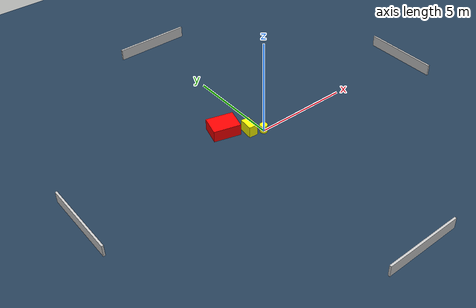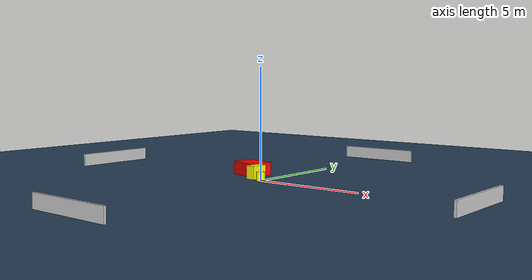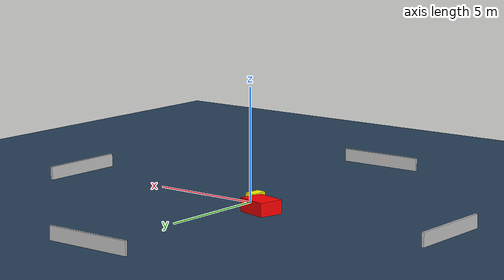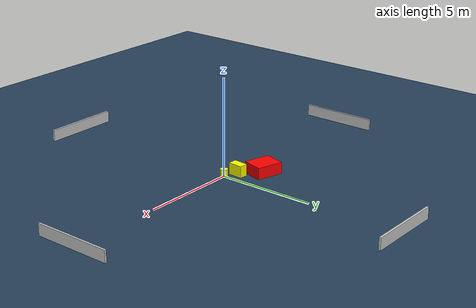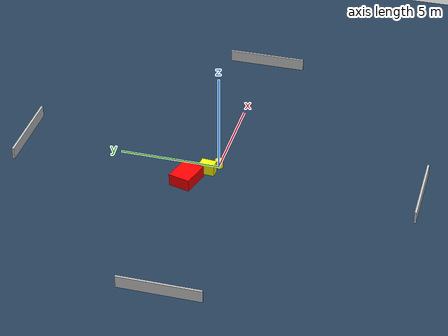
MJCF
<?xml version="1.0" ?>
<mujoco model="generated_environment">
  <option timestep="0.01" integrator="RK4" cone="elliptic"/>
  <default>
    <geom density="1"/>
  </default>
  <asset>
    <texture builtin="gradient" height="3072" name="skybox" rgb1="0.3 0.5 0.7" rgb2="0 0 0" type="skybox" width="512"/>
    <texture builtin="checker" height="300" name="groundplane" rgb1="0.2 0.3 0.4" rgb2="0.1 0.2 0.3" type="2d" width="300"/>
    <material name="groundplane" reflectance="0.2" texrepeat="5 5" texture="groundplane"/>
  </asset>
  <worldbody>
    <light dir="0 0 -1" directional="true" pos="0 0 1.5"/>
    <geom condim="3" friction="0.5 0.005 0.001" material="groundplane" name="floor" pos="0 0 0" size="0 0 0.05" type="plane"/>
    <body name="walls">
      <geom name="wall_1" condim="4" pos="-10.0 0.0 0.3" rgba="0.800000011920929 0.800000011920929 0.800000011920929 1.0" size="0.05 2.0 0.3" type="box"/>
      <geom name="wall_2" condim="4" pos="10.0 0.0 0.3" rgba="0.800000011920929 0.800000011920929 0.800000011920929 1.0" size="0.05 2.0 0.3" type="box"/>
      <geom name="wall_3" condim="4" pos="0.0 -10.0 0.3" rgba="0.800000011920929 0.800000011920929 0.800000011920929 1.0" size="2.0 0.05 0.3" type="box"/>
      <geom name="wall_4" condim="4" pos="0.0 10.0 0.3" rgba="0.800000011920929 0.800000011920929 0.800000011920929 1.0" size="2.0 0.05 0.3" type="box"/>
    </body>
    <body name="robot">
      <joint name="joint_x" type="slide" pos="0 0 0" axis="1 0 0"/>
      <joint name="joint_y" type="slide" pos="0 0 0" axis="0 1 0"/>
      <geom name="robot" type="cylinder" pos="0.0 0.0 0.2" size="0.2 0.2 0.0" mass="5.0" friction="1.0 0.005 0.0001" condim="4" rgba="1.0 1.0 0.0 1.0"/>
    </body>
    <body name="obstacle_1_movable">
      <geom name="obstacle_1_movable" condim="4" pos="-0.5947953040824633 0.38974259124940885 0.3" euler="0 0 265.25491971520364" friction="0.0 0.005 0.001" rgba="1.0 1.0 0.0 1.0" size="0.3718147436438711 0.22449892331311394 0.3" type="box" mass="0.1"/>
      <joint type="free"/>
    </body>
    <body name="obstacle_2_static">
      <geom name="obstacle_2_static" condim="4" pos="-1.5450985324158713 1.2196149757811536 0.3" euler="0 0 254.692876808752" friction="0.0 0.005 0.001" rgba="1.0 0.0 0.0 1.0" size="0.5500600219337672 0.7046002549291872 0.3" type="box"/>
    </body>
  </worldbody>
  <actuator>
    <motor name="actuator_x" joint="joint_x" gear="1" ctrlrange="-1 1"/>
    <motor name="actuator_y" joint="joint_y" gear="1" ctrlrange="-1 1"/>
  </actuator>
</mujoco>
